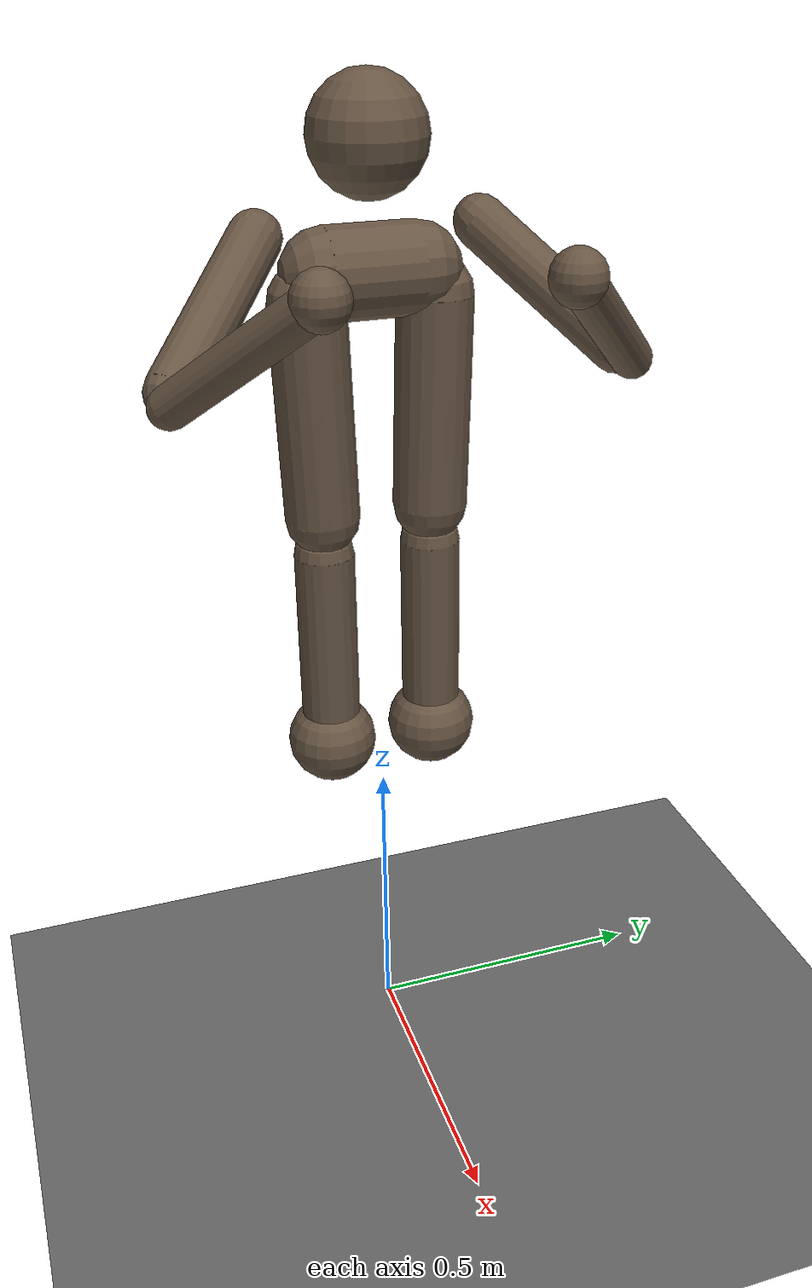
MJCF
<mujoco model="humanoid">
    <compiler angle="degree" inertiafromgeom="true"/>
    <default>
        <joint armature="1" damping="1" limited="true"/>
        <geom conaffinity="0" condim="3" contype="0" material="geom" rgba="0.4 0.33 0.26 1.0"/>
        <position kp="21.1" ctrlrange="-3.141592 3.141592"/>
    </default>
    <option iterations="8" timestep="0.003"/>
    <custom>
        <numeric data="2500" name="constraint_limit_stiffness"/>
        <numeric data="27000" name="constraint_stiffness"/>
        <numeric data="30" name="constraint_ang_damping"/>
        <numeric data="80" name="constraint_vel_damping"/>
        <numeric data="-0.05" name="ang_damping"/>
        <numeric data="0.5" name="joint_scale_pos"/>
        <numeric data="0.1" name="joint_scale_ang"/>
        <numeric data="0" name="spring_mass_scale"/>
        <numeric data="1" name="spring_inertia_scale"/>
        <numeric data="20" name="matrix_inv_iterations"/>
        <numeric data="15" name="solver_maxls"/>
    </custom>
    <size nkey="5" nuser_geom="1"/>
    <visual>
        <map fogend="5" fogstart="3"/>
    </visual>
    <asset>
        <texture builtin="gradient" height="100" rgb1=".4 .5 .6" rgb2="0 0 0" type="skybox" width="100"/>
        <texture builtin="flat" height="1278" mark="cross" markrgb="1 1 1" name="texgeom" random="0.01" rgb1="0.8 0.6 0.4" rgb2="0.8 0.6 0.4" type="cube" width="127"/>
        <texture builtin="checker" height="100" name="texplane" rgb1="0 0 0" rgb2="0.8 0.8 0.8" type="2d" width="100"/>
        <material name="MatPlane" reflectance="0.5" shininess="1" specular="1" texrepeat="60 60" texture="texplane"/>
        <material name="geom" texture="texgeom" texuniform="true"/>
    </asset>
    <worldbody>
        <light cutoff="100" diffuse="1 1 1" dir="-0 0 -1.3" directional="true" exponent="1" pos="0 0 1.3" specular=".1 .1 .1"/>
        <geom conaffinity="1" condim="3" friction="1 .1 .1" material="MatPlane" name="floor" pos="0 0 0" size="20 20 0.125" type="plane" rgba="0.5 0.5 0.5 1.0"/>
        <body name="torso" pos="0 0 1.4">
            <site name="IMU"/>
            <camera name="track" mode="trackcom" pos="0 -4 0" xyaxes="1 0 0 0 0 1"/>
            <joint armature="0" damping="0" limited="false" name="root" pos="0 0 0" stiffness="0" type="free"/>
            <geom contype="1" fromto="0 -.07 0 0 .07 0" name="torso1" size="0.07" type="capsule"/>

            <!-- Head with 2 DOF (pitch and yaw) -->
            <body name="head" pos="0 0 0.19">
                <joint name="head_pitch" type="hinge" axis="0 1 0" pos="0 0 0" range="-45 45"/>
                <joint name="head_yaw" type="hinge" axis="0 0 1" pos="0 0 0" range="-70 70"/>
                <geom contype="1" name="head" size=".09" type="sphere" user="258"/>
            </body>

            <!-- Right Arm (3 DOF at shoulder) -->
            <body name="right_upper_arm" pos="0 -0.17 0.06">
                <joint name="right_shoulder_pitch" type="hinge" axis="0 1 0" pos="0 0 0" range="-180 60"/>
                <joint name="right_shoulder_roll" type="hinge" axis="1 0 0" pos="0 0 0" range="-90 90"/>
                <joint name="right_shoulder_yaw" type="hinge" axis="0 0 1" pos="0 0 0" range="-90 90"/>
                <geom fromto="0 0 0 .16 -.16 -.16" name="right_uarm1" size="0.04 0.16" type="capsule"/>
                <body name="right_lower_arm" pos=".18 -.18 -.18">
                    <geom contype="1" fromto="0.01 0.01 0.01 .17 .17 .17" name="right_larm" size="0.031" type="capsule"/>
                    <geom contype="1" name="right_hand" pos=".18 .18 .18" size="0.04" type="sphere"/>
                </body>
            </body>

            <!-- Left Arm (3 DOF at shoulder) -->
            <body name="left_upper_arm" pos="0 0.17 0.06">
                <joint name="left_shoulder_pitch" type="hinge" axis="0 1 0" pos="0 0 0" range="-180 60"/>
                <joint name="left_shoulder_roll" type="hinge" axis="1 0 0" pos="0 0 0" range="-90 90"/>
                <joint name="left_shoulder_yaw" type="hinge" axis="0 0 1" pos="0 0 0" range="-90 90"/>
                <geom contype="1" fromto="0 0 0 .16 .16 -.16" name="left_uarm1" size="0.04 0.16" type="capsule"/>
                <body name="left_lower_arm" pos=".18 .18 -.18">
                    <geom contype="1" fromto="0.01 -0.01 0.01 .17 -.17 .17" name="left_larm" size="0.031" type="capsule"/>
                    <geom contype="1" name="left_hand" pos=".18 -.18 .18" size="0.04" type="sphere"/>
                </body>
            </body>

            <!-- Right Leg (6 DOF) -->
            <body name="right_thigh" pos="0 -0.1 -0.04">
                <!-- Hip joints -->
                <joint name="right_hip_pitch" type="hinge" axis="0 1 0" pos="0 0 0" range="-120 45"/>
                <joint name="right_hip_roll" type="hinge" axis="1 0 0" pos="0 0 0" range="-45 45"/>
                <joint name="right_hip_yaw" type="hinge" axis="0 0 1" pos="0 0 0" range="-60 60"/>
                <geom contype="1" fromto="0 0 0 0 0.01 -.34" name="right_thigh1" size="0.06" type="capsule"/>
                <body name="right_shin" pos="0 0.01 -0.403">
                    <!-- Knee joints -->
                    <joint name="right_knee_pitch" type="hinge" axis="0 1 0" pos="0 0 0" range="-160 0"/>
                    <joint name="right_knee_twist" type="hinge" axis="0 0 1" pos="0 0 0" range="-30 30"/>
                    <geom contype="1" fromto="0 0 0 0 0 -.3" name="right_shin1" size="0.049" type="capsule"/>
                    <body name="right_foot" pos="0 0 -0.45">
                        <!-- Ankle joint -->
                        <joint name="right_ankle_pitch" type="hinge" axis="0 1 0" pos="0 0 0" range="-45 45"/>
                        <geom contype="1" name="right_foot" pos="0 0 0.1" size="0.075" type="sphere" user="0"/>
                    </body>
                </body>
            </body>

            <!-- Left Leg (6 DOF) -->
            <body name="left_thigh" pos="0 0.1 -0.04">
                <!-- Hip joints -->
                <joint name="left_hip_pitch" type="hinge" axis="0 1 0" pos="0 0 0" range="-120 45"/>
                <joint name="left_hip_roll" type="hinge" axis="1 0 0" pos="0 0 0" range="-45 45"/>
                <joint name="left_hip_yaw" type="hinge" axis="0 0 1" pos="0 0 0" range="-60 60"/>
                <geom contype="1" fromto="0 0 0 0 -0.01 -.34" name="left_thigh1" size="0.06" type="capsule"/>
                <body name="left_shin" pos="0 -0.01 -0.403">
                    <!-- Knee joints -->
                    <joint name="left_knee_pitch" type="hinge" axis="0 1 0" pos="0 0 0" range="-160 0"/>
                    <joint name="left_knee_twist" type="hinge" axis="0 0 1" pos="0 0 0" range="-30 30"/>
                    <geom contype="1" fromto="0 0 0 0 0 -.3" name="left_shin1" size="0.049" type="capsule"/>
                    <body name="left_foot" pos="0 0 -0.45">
                        <!-- Ankle joint -->
                        <joint name="left_ankle_pitch" type="hinge" axis="0 1 0" pos="0 0 0" range="-45 45"/>
                        <geom contype="1" name="left_foot" type="sphere" size="0.075" pos="0 0 0.1" user="0"/>
                    </body>
                </body>
            </body>
        </body>
    </worldbody>

    <actuator>
        <!-- Head actuators -->
        <position joint="head_pitch" name="head_pitch"/>
        <position joint="head_yaw" name="head_yaw"/>

        <!-- Right arm actuators -->
        <position joint="right_shoulder_pitch" name="right_shoulder_pitch"/>
        <position joint="right_shoulder_roll" name="right_shoulder_roll"/>
        <position joint="right_shoulder_yaw" name="right_shoulder_yaw"/>

        <!-- Left arm actuators -->
        <position joint="left_shoulder_pitch" name="left_shoulder_pitch"/>
        <position joint="left_shoulder_roll" name="left_shoulder_roll"/>
        <position joint="left_shoulder_yaw" name="left_shoulder_yaw"/>

        <!-- Right leg actuators -->
        <position joint="right_hip_pitch" name="right_hip_pitch"/>
        <position joint="right_hip_roll" name="right_hip_roll"/>
        <position joint="right_hip_yaw" name="right_hip_yaw"/>
        <position joint="right_knee_pitch" name="right_knee_pitch"/>
        <position joint="right_knee_twist" name="right_knee_twist"/>
        <position joint="right_ankle_pitch" name="right_ankle_pitch"/>

        <!-- Left leg actuators -->
        <position joint="left_hip_pitch" name="left_hip_pitch"/>
        <position joint="left_hip_roll" name="left_hip_roll"/>
        <position joint="left_hip_yaw" name="left_hip_yaw"/>
        <position joint="left_knee_pitch" name="left_knee_pitch"/>
        <position joint="left_knee_twist" name="left_knee_twist"/>
        <position joint="left_ankle_pitch" name="left_ankle_pitch"/>
    </actuator>

    <sensor>
        <accelerometer name="accel" site="IMU"/>
        <gyro name="gyro" site="IMU"/>
    </sensor>

</mujoco>
